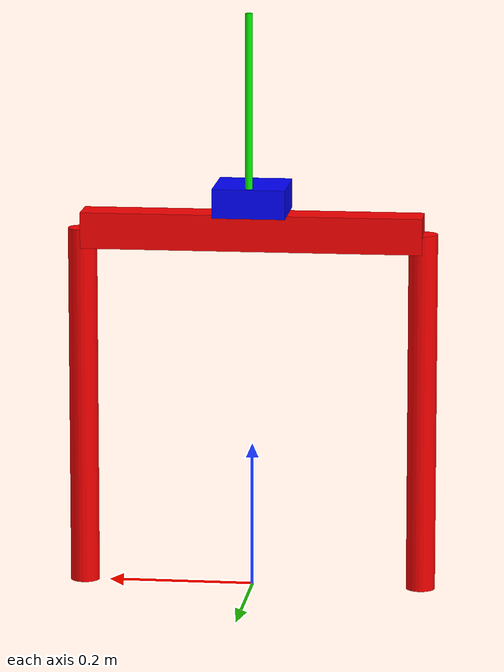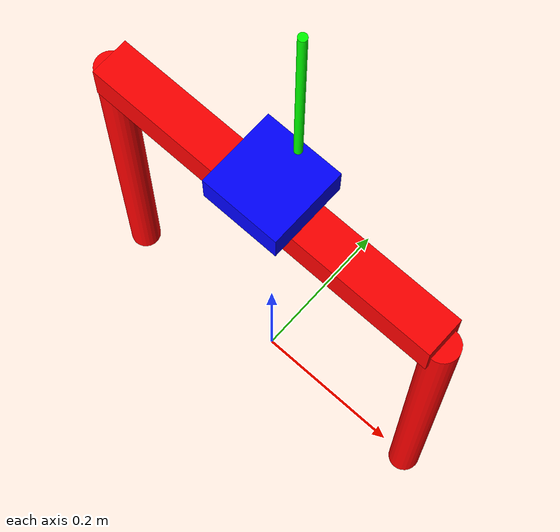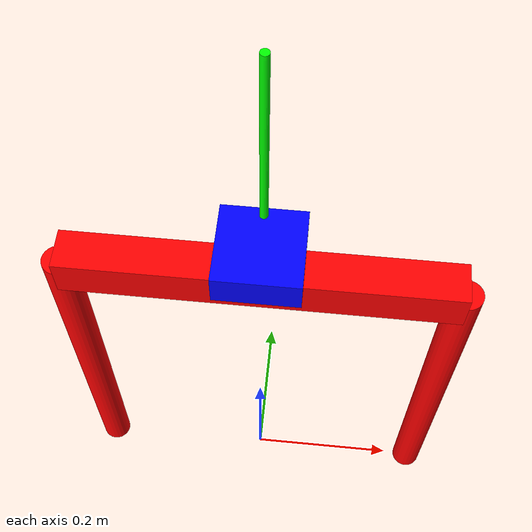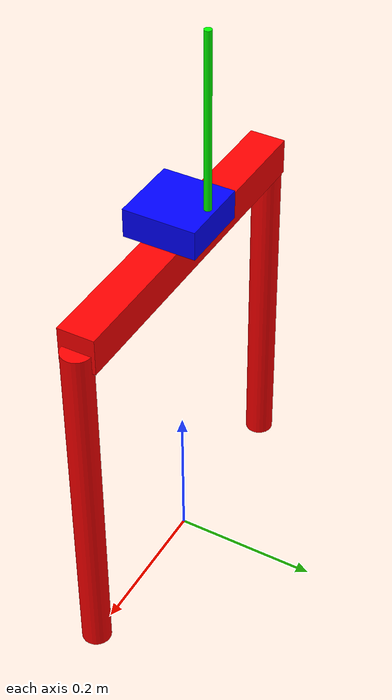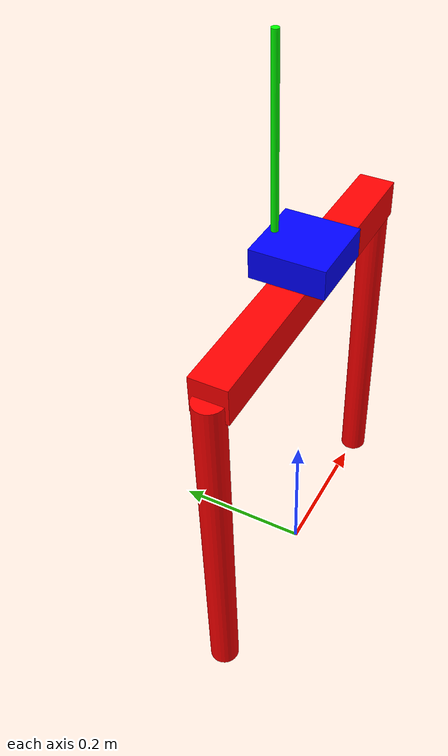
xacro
<?xml version="1.0" ?>
<robot xmlns:xacro="http://www.ros.org/wiki/xacro" name="cartpole">

  <xacro:arg name="is_sim" default="true"/>

  <xacro:include filename="$(find cartpole_description)/urdf/cartpole_gazebo.xacro"/>
  <xacro:include filename="$(find cartpole_description)/urdf/cartpole_control.xacro"/>

  <material name="red">
    <color rgba="1.0 0.0 0.0 1.0"/>
  </material>

  <material name="green">
    <color rgba="0.0 1.0 0.0 1.0"/>
  </material>

  <material name="blue">
    <color rgba="0.0 0.0 1.0 1.0"/>
  </material>

  <material name="gray">
    <color rgba="0.5 0.5 0.5 1.0"/>
  </material>

  <link name="slideBar">
    <visual>
      <geometry>
        <box size="0.47 0.05 0.05"/>
      </geometry>
      <origin xyz="0 0 0"/>
      <material name="red"/>
    </visual>
    <collision>
      <geometry>
        <box size="0.47 0.05 0.05"/>
      </geometry>
      <origin xyz="0 0 0"/>
    </collision>
    <inertial>
      <mass value="100"/>
      <inertia ixx="1.0" ixy="0.0" ixz="0.0" iyy="1.0" iyz="0.0" izz="1.0"/>
    </inertial>
  </link>

  <link name="cart">
    <visual>
      <geometry>
        <box size="0.1 0.1 0.04"/>
      </geometry>
      <origin xyz="0 0 0"/>
      <material name="blue"/>
    </visual>
    <collision>
      <geometry>
        <box size="0.1 0.1 0.04"/>
      </geometry>
      <origin xyz="0 0 0"/>
    </collision>
    <inertial>
      <mass value="1"/>
      <inertia ixx="0.1" ixy="0.0" ixz="0.0" iyy="0.1" iyz="0.0" izz="0.1"/>
    </inertial>
  </link>

  <link name="leg1">
    <visual>
      <geometry>
        <cylinder radius="0.02" length="0.5"/>
      </geometry>
      <origin xyz="0 0 -0.25"/>
      <material name="red"/>
    </visual>
    <collision>
      <geometry>
        <cylinder radius="0.02" length="0.5"/>
      </geometry>
      <origin xyz="0 0 -0.25"/>
    </collision>
    <inertial>
      <mass value="1"/>
      <inertia ixx="0.01" ixy="0.0" ixz="0.0" iyy="0.01" iyz="0.0" izz="0.01"/>
    </inertial>
  </link>

  <link name="leg2">
    <visual>
      <geometry>
        <cylinder radius="0.02" length="0.5"/>
      </geometry>
      <origin xyz="0 0 -0.25"/>
      <material name="red"/>
    </visual>
    <collision>
      <geometry>
        <cylinder radius="0.02" length="0.5"/>
      </geometry>
      <origin xyz="0 0 -0.25"/>
    </collision>
    <inertial>
      <mass value="1"/>
      <inertia ixx="0.01" ixy="0.0" ixz="0.0" iyy="0.01" iyz="0.0" izz="0.01"/>
    </inertial>
  </link>

  <link name="pole">
    <visual>
      <geometry>
        <cylinder radius="0.005" length="0.24"/>
      </geometry>
      <origin xyz="0 0 -0.12"/>
      <material name="green"/>
    </visual>
    <collision>
      <geometry>
        <cylinder radius="0.005" length="0.24"/>
      </geometry>
      <origin xyz="0 0 -0.12"/>
    </collision>
    <inertial>
      <mass value="0.1"/>
      <origin xyz="0 0 -0.12"/>
      <inertia
            ixx="0.0005" ixy="0.0" ixz="0.0"
            iyy="0.0005" iyz="0.0"
            izz="0.00001"/>
    </inertial>
  </link>

  <link name="world"/>

  <joint name="world_to_slideBar" type="fixed">
    <origin xyz="0 0 0.5"/>
    <parent link="world"/>
    <child link="slideBar"/>
  </joint>

  <joint name="slider_to_cart" type="prismatic">
    <axis xyz="1 0 0"/>
    <origin xyz="0.0 0.0 0.045"/>
    <parent link="slideBar"/>
    <child link="cart"/>
    <limit effort="20.0" lower="-0.235" upper="0.235" velocity="10.0"/>
    <dynamics damping="0.5" friction="0.5"/>
  </joint>

  <joint name="slider_to_leg1" type="fixed">
    <origin xyz="-0.235 0.0 0.0"/>
    <parent link="slideBar"/>
    <child link="leg1"/>
  </joint>

  <joint name="slider_to_leg2" type="fixed">
    <origin xyz="0.235 0.0 0.0"/>
    <parent link="slideBar"/>
    <child link="leg2"/>
  </joint>

<joint name="cart_to_pole" type="continuous">
  <parent link="cart"/>
  <child link="pole"/>
  <origin xyz="0 0.04 0.02" rpy="3.14159 0 0"/>
  <axis xyz="0 1 0"/>
  <dynamics damping="0.01" friction="0.0"/>
</joint>

</robot>
